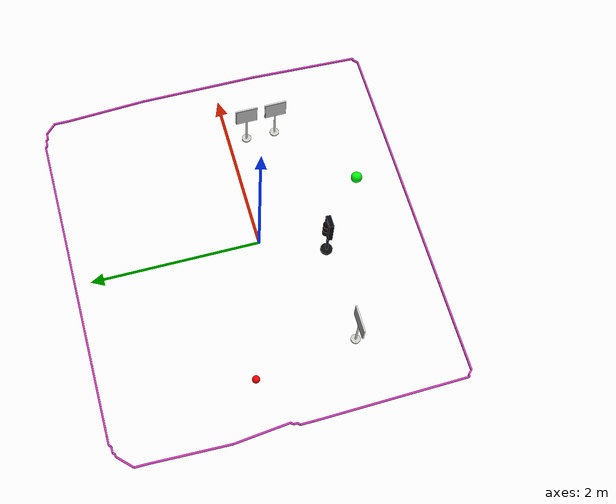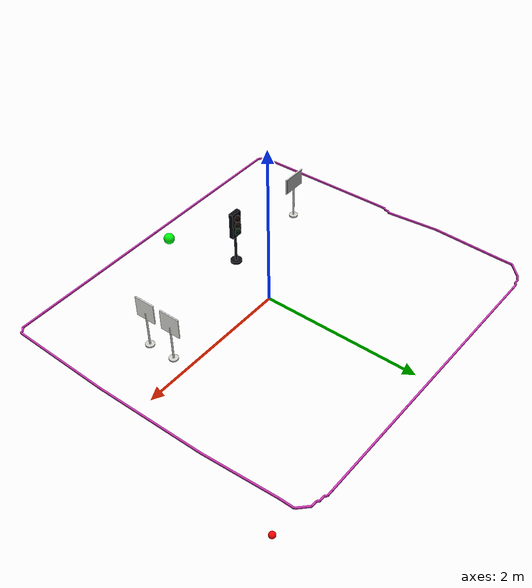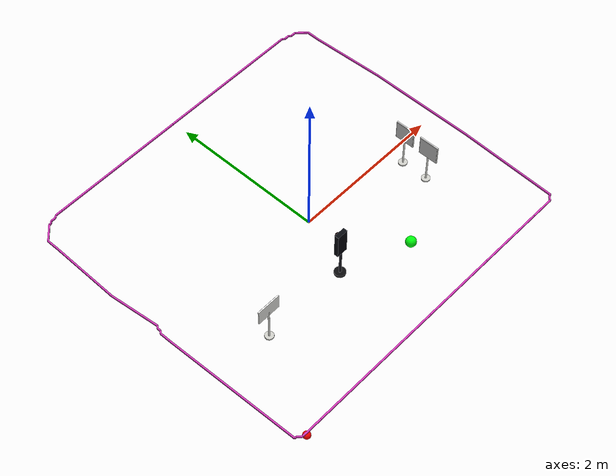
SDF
<sdf version="1.7">
 <world name="autonomous_map_3d_world">
  <model name="traffic_light_lower_island">
   <static>1</static>
   <link name="traffic_light_link">
    <visual name="base_visual">
     <pose>0 0 0.015 0 -0 0</pose>
     <geometry><cylinder><radius>0.07</radius><length>0.03</length></cylinder></geometry>
     <material><ambient>0.03 0.03 0.04 1</ambient><diffuse>0.04 0.04 0.05 1</diffuse></material>
    </visual>
    <visual name="pole_visual">
     <pose>0 0 0.25 0 -0 0</pose>
     <geometry><cylinder><radius>0.016</radius><length>0.47</length></cylinder></geometry>
     <material><ambient>0.08 0.08 0.1 1</ambient><diffuse>0.1 0.1 0.13 1</diffuse></material>
    </visual>
    <visual name="housing_visual">
     <pose>0 -0.006 0.565 0 -0 0</pose>
     <geometry><box><size>0.145 0.055 0.34</size></box></geometry>
     <material><ambient>0.02 0.025 0.04 1</ambient><diffuse>0.03 0.035 0.06 1</diffuse></material>
    </visual>
    <visual name="red_lens_visual">
     <pose>0 -0.038 0.66 0 -0 0</pose>
     <geometry><sphere><radius>0.043</radius></sphere></geometry>
     <material>
      <ambient>0.035 0.002 0.002 1</ambient>
      <diffuse>0.06 0.004 0.004 1</diffuse>
      <emissive>0 0 0 1</emissive>
     </material>
    </visual>
    <visual name="yellow_lens_visual">
     <pose>0 -0.038 0.565 0 -0 0</pose>
     <geometry><sphere><radius>0.043</radius></sphere></geometry>
     <material>
      <ambient>0.035 0.025 0.002 1</ambient>
      <diffuse>0.06 0.045 0.004 1</diffuse>
      <emissive>0 0 0 1</emissive>
     </material>
    </visual>
    <visual name="green_lens_visual">
     <pose>0 -0.038 0.47 0 -0 0</pose>
     <geometry><sphere><radius>0.043</radius></sphere></geometry>
     <material>
      <ambient>0.002 0.04 0.004 1</ambient>
      <diffuse>0.004 0.078 0.01 1</diffuse>
      <emissive>0 0 0 1</emissive>
     </material>
    </visual>
   </link>
   <pose>-0.281200 -0.731200 0.000000 0.000000 -0.000000 3.141593</pose>
  </model>
  <model name="traffic_light_top_island_red_active_lamp">
   <static>0</static>
   <link name="lamp_link">
    <gravity>0</gravity>
    <visual name="lamp_visual">
     <geometry><sphere><radius>0.065</radius></sphere></geometry>
     <material><ambient>1 0 0 1</ambient><diffuse>1 0 0 1</diffuse><emissive>0.0313726 0 0 1</emissive></material>
    </visual>
    <kinematic>1</kinematic>
    <inertial>
     <inertia><ixx>1</ixx><ixy>0</ixy><ixz>0</ixz><iyy>1</iyy><iyz>0</iyz><izz>1</izz></inertia>
     <mass>1</mass>
    </inertial>
   </link>
   <pose>-0.000000 0.000000 -5.000000 0.000000 -0.000000 3.141593</pose>
  </model>
  <model name="traffic_light_top_island_yellow_active_lamp">
   <static>0</static>
   <link name="lamp_link">
    <gravity>0</gravity>
    <visual name="lamp_visual">
     <geometry><sphere><radius>0.065</radius></sphere></geometry>
     <material>
      <ambient>1 0.72 0 1</ambient>
      <diffuse>1 0.72 0 1</diffuse>
      <emissive>0.0313726 0.0203922 0 1</emissive>
     </material>
    </visual>
    <kinematic>1</kinematic>
    <inertial>
     <inertia><ixx>1</ixx><ixy>0</ixy><ixz>0</ixz><iyy>1</iyy><iyz>0</iyz><izz>1</izz></inertia>
     <mass>1</mass>
    </inertial>
   </link>
   <pose>-0.000000 0.000000 -5.000000 0.000000 -0.000000 3.141593</pose>
  </model>
  <model name="traffic_light_lower_island_red_active_lamp">
   <static>0</static>
   <link name="lamp_link">
    <gravity>0</gravity>
    <visual name="lamp_visual">
     <geometry><sphere><radius>0.065</radius></sphere></geometry>
     <material><ambient>1 0 0 1</ambient><diffuse>1 0 0 1</diffuse><emissive>0.0313726 0 0 1</emissive></material>
    </visual>
    <kinematic>1</kinematic>
    <inertial>
     <inertia><ixx>1</ixx><ixy>0</ixy><ixz>0</ixz><iyy>1</iyy><iyz>0</iyz><izz>1</izz></inertia>
     <mass>1</mass>
    </inertial>
   </link>
   <pose>-0.000000 0.000000 -5.000000 0.000000 -0.000000 3.141593</pose>
  </model>
  <model name="traffic_light_lower_island_yellow_active_lamp">
   <static>0</static>
   <link name="lamp_link">
    <gravity>0</gravity>
    <visual name="lamp_visual">
     <geometry><sphere><radius>0.065</radius></sphere></geometry>
     <material>
      <ambient>1 0.72 0 1</ambient>
      <diffuse>1 0.72 0 1</diffuse>
      <emissive>0.0313726 0.0203922 0 1</emissive>
     </material>
    </visual>
    <kinematic>1</kinematic>
    <inertial>
     <inertia><ixx>1</ixx><ixy>0</ixy><ixz>0</ixz><iyy>1</iyy><iyz>0</iyz><izz>1</izz></inertia>
     <mass>1</mass>
    </inertial>
   </link>
   <pose>-0.000000 0.000000 -5.000000 0.000000 -0.000000 3.141593</pose>
  </model>
  <model name="traffic_light_lower_island_green_active_lamp">
   <static>0</static>
   <link name="lamp_link">
    <gravity>0</gravity>
    <visual name="lamp_visual">
     <geometry><sphere><radius>0.065</radius></sphere></geometry>
     <material>
      <ambient>0 1 0.05 1</ambient>
      <diffuse>0 1 0.05 1</diffuse>
      <emissive>0 0.0313726 0.3 1</emissive>
     </material>
    </visual>
    <kinematic>1</kinematic>
    <inertial>
     <inertia><ixx>1</ixx><ixy>0</ixy><ixz>0</ixz><iyy>1</iyy><iyz>0</iyz><izz>1</izz></inertia>
     <mass>1</mass>
    </inertial>
   </link>
   <pose>0.308200 -1.237500 0.470000 0.000000 -0.000000 3.141593</pose>
  </model>
  <model name="sign_speed_limit_left_island">
   <static>1</static>
   <link name="sign_link">
    <visual name="base_visual">
     <pose>0 0 0.01 0 -0 0</pose>
     <geometry><cylinder><radius>0.055</radius><length>0.02</length></cylinder></geometry>
     <material><ambient>0.72 0.72 0.7 1</ambient><diffuse>0.78 0.78 0.76 1</diffuse></material>
    </visual>
    <visual name="pole_visual">
     <pose>0 0 0.245 0 -0 0</pose>
     <geometry><cylinder><radius>0.011</radius><length>0.47</length></cylinder></geometry>
     <material><ambient>0.72 0.72 0.7 1</ambient><diffuse>0.82 0.82 0.8 1</diffuse></material>
    </visual>
    <visual name="back_plate_visual">
     <pose>0 0 0.52 0 -0 0</pose>
     <geometry><box><size>0.26 0.014 0.26</size></box></geometry>
     <material><ambient>0.96 0.96 0.94 1</ambient><diffuse>0.98 0.98 0.96 1</diffuse></material>
    </visual>
    <visual name="sign_face_visual">
     <pose>0 -0.011 0.52 0 -0 0</pose>
     <geometry><box><size>0.246 0.004 0.246</size></box></geometry>
     <material>
      <script>
       <uri>model://road_sign_speed_limit/materials/scripts</uri>
       <uri>model://road_sign_speed_limit/materials/textures</uri>
       <name>RoadSign/SpeedLimit</name>
      </script>
     </material>
    </visual>
   </link>
   <pose>1.406200 -0.567200 0.000000 0.000000 0.000000 -1.570793</pose>
  </model>
  <model name="sign_parking_lower_right_island">
   <static>1</static>
   <link name="sign_link">
    <visual name="base_visual">
     <pose>0 0 0.01 0 -0 0</pose>
     <geometry><cylinder><radius>0.055</radius><length>0.02</length></cylinder></geometry>
     <material><ambient>0.72 0.72 0.7 1</ambient><diffuse>0.78 0.78 0.76 1</diffuse></material>
    </visual>
    <visual name="pole_visual">
     <pose>0 0 0.245 0 -0 0</pose>
     <geometry><cylinder><radius>0.011</radius><length>0.47</length></cylinder></geometry>
     <material><ambient>0.72 0.72 0.7 1</ambient><diffuse>0.82 0.82 0.8 1</diffuse></material>
    </visual>
    <visual name="back_plate_visual">
     <pose>0 0 0.52 0 -0 0</pose>
     <geometry><box><size>0.31 0.014 0.21</size></box></geometry>
     <material><ambient>0.96 0.96 0.94 1</ambient><diffuse>0.98 0.98 0.96 1</diffuse></material>
    </visual>
    <visual name="sign_face_visual">
     <pose>0 -0.011 0.52 0 -0 0</pose>
     <geometry><box><size>0.294 0.004 0.196</size></box></geometry>
     <material>
      <script>
       <uri>model://road_sign_parking/materials/scripts</uri>
       <uri>model://road_sign_parking/materials/textures</uri>
       <name>RoadSign/Parking</name>
      </script>
     </material>
    </visual>
   </link>
   <pose>-1.429700 -0.731200 0.000000 0.000000 -0.000000 3.141593</pose>
  </model>
  <model name="sign_turn_left_lower_left_island">
   <static>1</static>
   <link name="sign_link">
    <visual name="base_visual">
     <pose>0 0 0.01 0 -0 0</pose>
     <geometry><cylinder><radius>0.055</radius><length>0.02</length></cylinder></geometry>
     <material><ambient>0.72 0.72 0.7 1</ambient><diffuse>0.78 0.78 0.76 1</diffuse></material>
    </visual>
    <visual name="pole_visual">
     <pose>0 0 0.245 0 -0 0</pose>
     <geometry><cylinder><radius>0.011</radius><length>0.47</length></cylinder></geometry>
     <material><ambient>0.72 0.72 0.7 1</ambient><diffuse>0.82 0.82 0.8 1</diffuse></material>
    </visual>
    <visual name="back_plate_visual">
     <pose>0 0 0.52 0 -0 0</pose>
     <geometry><box><size>0.26 0.014 0.26</size></box></geometry>
     <material><ambient>0.96 0.96 0.94 1</ambient><diffuse>0.98 0.98 0.96 1</diffuse></material>
    </visual>
    <visual name="sign_face_visual">
     <pose>0 -0.011 0.52 0 -0 0</pose>
     <geometry><box><size>0.246 0.004 0.246</size></box></geometry>
     <material>
      <script>
       <uri>model://road_sign_turn_left/materials/scripts</uri>
       <uri>model://road_sign_turn_left/materials/textures</uri>
       <name>RoadSign/TurnLeft</name>
      </script>
     </material>
    </visual>
   </link>
   <pose>1.406200 -0.215600 0.000000 0.000000 0.000000 -1.570793</pose>
  </model>
  <model name="route_preview_code_transform_magenta">
   <static>1</static>
   <link name="route_preview_link">
    <visual name="route_segment_0000">
     <pose>-0.937500 2.179688 0.040000 0.000000 0.000000 0.000000</pose>
     <geometry><box><size>1.781250 0.020000 0.020000</size></box></geometry>
     <material>
      <script><name>Gazebo/RoutePreviewMagenta</name></script>
      <ambient>1 0 1 1</ambient>
      <diffuse>1 0 1 1</diffuse>
      <emissive>0.7 0 0.7 1</emissive>
     </material>
    </visual>
    <visual name="route_segment_0001">
     <pose>0.210938 2.179688 0.040000 0.000000 0.000000 0.000000</pose>
     <geometry><box><size>0.515625 0.020000 0.020000</size></box></geometry>
     <material>
      <script><name>Gazebo/RoutePreviewMagenta</name></script>
      <ambient>1 0 1 1</ambient>
      <diffuse>1 0 1 1</diffuse>
      <emissive>0.7 0 0.7 1</emissive>
     </material>
    </visual>
    <visual name="route_segment_0002">
     <pose>0.703125 2.179688 0.040000 0.000000 0.000000 0.000000</pose>
     <geometry><box><size>0.468750 0.020000 0.020000</size></box></geometry>
     <material>
      <script><name>Gazebo/RoutePreviewMagenta</name></script>
      <ambient>1 0 1 1</ambient>
      <diffuse>1 0 1 1</diffuse>
      <emissive>0.7 0 0.7 1</emissive>
     </material>
    </visual>
    <visual name="route_segment_0003">
     <pose>1.371094 2.179688 0.040000 0.000000 0.000000 0.000000</pose>
     <geometry><box><size>0.867188 0.020000 0.020000</size></box></geometry>
     <material>
      <script><name>Gazebo/RoutePreviewMagenta</name></script>
      <ambient>1 0 1 1</ambient>
      <diffuse>1 0 1 1</diffuse>
      <emissive>0.7 0 0.7 1</emissive>
     </material>
    </visual>
    <visual name="route_segment_0004">
     <pose>1.839844 2.179688 0.040000 0.000000 0.000000 0.000000</pose>
     <geometry><box><size>0.070312 0.020000 0.020000</size></box></geometry>
     <material>
      <script><name>Gazebo/RoutePreviewMagenta</name></script>
      <ambient>1 0 1 1</ambient>
      <diffuse>1 0 1 1</diffuse>
      <emissive>0.7 0 0.7 1</emissive>
     </material>
    </visual>
    <visual name="route_segment_0005">
     <pose>1.886719 2.167969 0.040000 0.000000 0.000000 -0.785398</pose>
     <geometry><box><size>0.033146 0.020000 0.020000</size></box></geometry>
     <material>
      <script><name>Gazebo/RoutePreviewMagenta</name></script>
      <ambient>1 0 1 1</ambient>
      <diffuse>1 0 1 1</diffuse>
      <emissive>0.7 0 0.7 1</emissive>
     </material>
    </visual>
    <visual name="route_segment_0006">
     <pose>1.933594 2.156250 0.040000 0.000000 0.000000 0.000000</pose>
     <geometry><box><size>0.070312 0.020000 0.020000</size></box></geometry>
     <material>
      <script><name>Gazebo/RoutePreviewMagenta</name></script>
      <ambient>1 0 1 1</ambient>
      <diffuse>1 0 1 1</diffuse>
      <emissive>0.7 0 0.7 1</emissive>
     </material>
    </visual>
    <visual name="route_segment_0007">
     <pose>1.980469 2.144531 0.040000 0.000000 0.000000 -0.785398</pose>
     <geometry><box><size>0.033146 0.020000 0.020000</size></box></geometry>
     <material>
      <script><name>Gazebo/RoutePreviewMagenta</name></script>
      <ambient>1 0 1 1</ambient>
      <diffuse>1 0 1 1</diffuse>
      <emissive>0.7 0 0.7 1</emissive>
     </material>
    </visual>
    <visual name="route_segment_0008">
     <pose>2.027344 2.132812 0.040000 0.000000 0.000000 0.000000</pose>
     <geometry><box><size>0.070312 0.020000 0.020000</size></box></geometry>
     <material>
      <script><name>Gazebo/RoutePreviewMagenta</name></script>
      <ambient>1 0 1 1</ambient>
      <diffuse>1 0 1 1</diffuse>
      <emissive>0.7 0 0.7 1</emissive>
     </material>
    </visual>
    <visual name="route_segment_0009">
     <pose>2.121094 2.074219 0.040000 0.000000 0.000000 -0.785398</pose>
     <geometry><box><size>0.165728 0.020000 0.020000</size></box></geometry>
     <material>
      <script><name>Gazebo/RoutePreviewMagenta</name></script>
      <ambient>1 0 1 1</ambient>
      <diffuse>1 0 1 1</diffuse>
      <emissive>0.7 0 0.7 1</emissive>
     </material>
    </visual>
    <visual name="route_segment_0010">
     <pose>2.179688 1.921875 0.040000 0.000000 0.000000 -1.570796</pose>
     <geometry><box><size>0.187500 0.020000 0.020000</size></box></geometry>
     <material>
      <script><name>Gazebo/RoutePreviewMagenta</name></script>
      <ambient>1 0 1 1</ambient>
      <diffuse>1 0 1 1</diffuse>
      <emissive>0.7 0 0.7 1</emissive>
     </material>
    </visual>
    <visual name="route_segment_0011">
     <pose>2.203125 1.359375 0.040000 0.000000 0.000000 -1.520838</pose>
     <geometry><box><size>0.938671 0.020000 0.020000</size></box></geometry>
     <material>
      <script><name>Gazebo/RoutePreviewMagenta</name></script>
      <ambient>1 0 1 1</ambient>
      <diffuse>1 0 1 1</diffuse>
      <emissive>0.7 0 0.7 1</emissive>
     </material>
    </visual>
    <visual name="route_segment_0012">
     <pose>2.226562 0.187500 0.040000 0.000000 0.000000 -1.570796</pose>
     <geometry><box><size>1.406250 0.020000 0.020000</size></box></geometry>
     <material>
      <script><name>Gazebo/RoutePreviewMagenta</name></script>
      <ambient>1 0 1 1</ambient>
      <diffuse>1 0 1 1</diffuse>
      <emissive>0.7 0 0.7 1</emissive>
     </material>
    </visual>
    <visual name="route_segment_0013">
     <pose>2.203125 -1.160156 0.040000 0.000000 0.000000 -1.607144</pose>
     <geometry><box><size>1.289914 0.020000 0.020000</size></box></geometry>
     <material>
      <script><name>Gazebo/RoutePreviewMagenta</name></script>
      <ambient>1 0 1 1</ambient>
      <diffuse>1 0 1 1</diffuse>
      <emissive>0.7 0 0.7 1</emissive>
     </material>
    </visual>
    <visual name="route_segment_0014">
     <pose>2.167969 -1.804688 0.040000 0.000000 0.000000 3.141593</pose>
     <geometry><box><size>0.023438 0.020000 0.020000</size></box></geometry>
     <material>
      <script><name>Gazebo/RoutePreviewMagenta</name></script>
      <ambient>1 0 1 1</ambient>
      <diffuse>1 0 1 1</diffuse>
      <emissive>0.7 0 0.7 1</emissive>
     </material>
    </visual>
    <visual name="route_segment_0015">
     <pose>2.132812 -1.828125 0.040000 0.000000 0.000000 -2.356194</pose>
     <geometry><box><size>0.066291 0.020000 0.020000</size></box></geometry>
     <material>
      <script><name>Gazebo/RoutePreviewMagenta</name></script>
      <ambient>1 0 1 1</ambient>
      <diffuse>1 0 1 1</diffuse>
      <emissive>0.7 0 0.7 1</emissive>
     </material>
    </visual>
    <visual name="route_segment_0016">
     <pose>1.957031 -1.851562 0.040000 0.000000 0.000000 3.141593</pose>
     <geometry><box><size>0.304688 0.020000 0.020000</size></box></geometry>
     <material>
      <script><name>Gazebo/RoutePreviewMagenta</name></script>
      <ambient>1 0 1 1</ambient>
      <diffuse>1 0 1 1</diffuse>
      <emissive>0.7 0 0.7 1</emissive>
     </material>
    </visual>
    <visual name="route_segment_0017">
     <pose>1.371094 -1.851562 0.040000 0.000000 0.000000 3.141593</pose>
     <geometry><box><size>0.867188 0.020000 0.020000</size></box></geometry>
     <material>
      <script><name>Gazebo/RoutePreviewMagenta</name></script>
      <ambient>1 0 1 1</ambient>
      <diffuse>1 0 1 1</diffuse>
      <emissive>0.7 0 0.7 1</emissive>
     </material>
    </visual>
    <visual name="route_segment_0018">
     <pose>0.445312 -1.851562 0.040000 0.000000 0.000000 3.141593</pose>
     <geometry><box><size>0.984375 0.020000 0.020000</size></box></geometry>
     <material>
      <script><name>Gazebo/RoutePreviewMagenta</name></script>
      <ambient>1 0 1 1</ambient>
      <diffuse>1 0 1 1</diffuse>
      <emissive>0.7 0 0.7 1</emissive>
     </material>
    </visual>
    <visual name="route_segment_0019">
     <pose>-0.539062 -1.851562 0.040000 0.000000 0.000000 3.141593</pose>
     <geometry><box><size>0.984375 0.020000 0.020000</size></box></geometry>
     <material>
      <script><name>Gazebo/RoutePreviewMagenta</name></script>
      <ambient>1 0 1 1</ambient>
      <diffuse>1 0 1 1</diffuse>
      <emissive>0.7 0 0.7 1</emissive>
     </material>
    </visual>
    <visual name="route_segment_0020">
     <pose>-1.429688 -1.851562 0.040000 0.000000 0.000000 3.141593</pose>
     <geometry><box><size>0.796875 0.020000 0.020000</size></box></geometry>
     <material>
      <script><name>Gazebo/RoutePreviewMagenta</name></script>
      <ambient>1 0 1 1</ambient>
      <diffuse>1 0 1 1</diffuse>
      <emissive>0.7 0 0.7 1</emissive>
     </material>
    </visual>
    <visual name="route_segment_0021">
     <pose>-1.968750 -1.851562 0.040000 0.000000 0.000000 3.141593</pose>
     <geometry><box><size>0.281250 0.020000 0.020000</size></box></geometry>
     <material>
      <script><name>Gazebo/RoutePreviewMagenta</name></script>
      <ambient>1 0 1 1</ambient>
      <diffuse>1 0 1 1</diffuse>
      <emissive>0.7 0 0.7 1</emissive>
     </material>
    </visual>
    <visual name="route_segment_0022">
     <pose>-2.132812 -1.828125 0.040000 0.000000 0.000000 2.356194</pose>
     <geometry><box><size>0.066291 0.020000 0.020000</size></box></geometry>
     <material>
      <script><name>Gazebo/RoutePreviewMagenta</name></script>
      <ambient>1 0 1 1</ambient>
      <diffuse>1 0 1 1</diffuse>
      <emissive>0.7 0 0.7 1</emissive>
     </material>
    </visual>
    <visual name="route_segment_0023">
     <pose>-2.167969 -1.804688 0.040000 0.000000 0.000000 3.141593</pose>
     <geometry><box><size>0.023438 0.020000 0.020000</size></box></geometry>
     <material>
      <script><name>Gazebo/RoutePreviewMagenta</name></script>
      <ambient>1 0 1 1</ambient>
      <diffuse>1 0 1 1</diffuse>
      <emissive>0.7 0 0.7 1</emissive>
     </material>
    </visual>
    <visual name="route_segment_0024">
     <pose>-2.203125 -0.902344 0.040000 0.000000 0.000000 1.596765</pose>
     <geometry><box><size>1.805296 0.020000 0.020000</size></box></geometry>
     <material>
      <script><name>Gazebo/RoutePreviewMagenta</name></script>
      <ambient>1 0 1 1</ambient>
      <diffuse>1 0 1 1</diffuse>
      <emissive>0.7 0 0.7 1</emissive>
     </material>
    </visual>
    <visual name="route_segment_0025">
     <pose>-2.226562 0.070312 0.040000 0.000000 0.000000 1.570796</pose>
     <geometry><box><size>0.140625 0.020000 0.020000</size></box></geometry>
     <material>
      <script><name>Gazebo/RoutePreviewMagenta</name></script>
      <ambient>1 0 1 1</ambient>
      <diffuse>1 0 1 1</diffuse>
      <emissive>0.7 0 0.7 1</emissive>
     </material>
    </visual>
    <visual name="route_segment_0026">
     <pose>-2.214844 0.152344 0.040000 0.000000 0.000000 0.785398</pose>
     <geometry><box><size>0.033146 0.020000 0.020000</size></box></geometry>
     <material>
      <script><name>Gazebo/RoutePreviewMagenta</name></script>
      <ambient>1 0 1 1</ambient>
      <diffuse>1 0 1 1</diffuse>
      <emissive>0.7 0 0.7 1</emissive>
     </material>
    </visual>
    <visual name="route_segment_0027">
     <pose>-2.203125 0.187500 0.040000 0.000000 0.000000 1.570796</pose>
     <geometry><box><size>0.046875 0.020000 0.020000</size></box></geometry>
     <material>
      <script><name>Gazebo/RoutePreviewMagenta</name></script>
      <ambient>1 0 1 1</ambient>
      <diffuse>1 0 1 1</diffuse>
      <emissive>0.7 0 0.7 1</emissive>
     </material>
    </visual>
    <visual name="route_segment_0028">
     <pose>-2.191406 0.222656 0.040000 0.000000 0.000000 0.785398</pose>
     <geometry><box><size>0.033146 0.020000 0.020000</size></box></geometry>
     <material>
      <script><name>Gazebo/RoutePreviewMagenta</name></script>
      <ambient>1 0 1 1</ambient>
      <diffuse>1 0 1 1</diffuse>
      <emissive>0.7 0 0.7 1</emissive>
     </material>
    </visual>
    <visual name="route_segment_0029">
     <pose>-2.214844 0.562500 0.040000 0.000000 0.000000 1.677532</pose>
     <geometry><box><size>0.660006 0.020000 0.020000</size></box></geometry>
     <material>
      <script><name>Gazebo/RoutePreviewMagenta</name></script>
      <ambient>1 0 1 1</ambient>
      <diffuse>1 0 1 1</diffuse>
      <emissive>0.7 0 0.7 1</emissive>
     </material>
    </visual>
    <visual name="route_segment_0030">
     <pose>-2.238281 1.347656 0.040000 0.000000 0.000000 1.545161</pose>
     <geometry><box><size>0.914363 0.020000 0.020000</size></box></geometry>
     <material>
      <script><name>Gazebo/RoutePreviewMagenta</name></script>
      <ambient>1 0 1 1</ambient>
      <diffuse>1 0 1 1</diffuse>
      <emissive>0.7 0 0.7 1</emissive>
     </material>
    </visual>
    <visual name="route_segment_0031">
     <pose>-2.226562 1.886719 0.040000 0.000000 0.000000 1.570796</pose>
     <geometry><box><size>0.164062 0.020000 0.020000</size></box></geometry>
     <material>
      <script><name>Gazebo/RoutePreviewMagenta</name></script>
      <ambient>1 0 1 1</ambient>
      <diffuse>1 0 1 1</diffuse>
      <emissive>0.7 0 0.7 1</emissive>
     </material>
    </visual>
    <visual name="route_segment_0032">
     <pose>-2.144531 2.050781 0.040000 0.000000 0.000000 0.785398</pose>
     <geometry><box><size>0.232019 0.020000 0.020000</size></box></geometry>
     <material>
      <script><name>Gazebo/RoutePreviewMagenta</name></script>
      <ambient>1 0 1 1</ambient>
      <diffuse>1 0 1 1</diffuse>
      <emissive>0.7 0 0.7 1</emissive>
     </material>
    </visual>
    <visual name="route_segment_0033">
     <pose>-2.050781 2.132812 0.040000 0.000000 0.000000 0.000000</pose>
     <geometry><box><size>0.023438 0.020000 0.020000</size></box></geometry>
     <material>
      <script><name>Gazebo/RoutePreviewMagenta</name></script>
      <ambient>1 0 1 1</ambient>
      <diffuse>1 0 1 1</diffuse>
      <emissive>0.7 0 0.7 1</emissive>
     </material>
    </visual>
    <visual name="route_segment_0034">
     <pose>-2.027344 2.144531 0.040000 0.000000 0.000000 0.785398</pose>
     <geometry><box><size>0.033146 0.020000 0.020000</size></box></geometry>
     <material>
      <script><name>Gazebo/RoutePreviewMagenta</name></script>
      <ambient>1 0 1 1</ambient>
      <diffuse>1 0 1 1</diffuse>
      <emissive>0.7 0 0.7 1</emissive>
     </material>
    </visual>
    <visual name="route_segment_0035">
     <pose>-1.980469 2.156250 0.040000 0.000000 0.000000 0.000000</pose>
     <geometry><box><size>0.070312 0.020000 0.020000</size></box></geometry>
     <material>
      <script><name>Gazebo/RoutePreviewMagenta</name></script>
      <ambient>1 0 1 1</ambient>
      <diffuse>1 0 1 1</diffuse>
      <emissive>0.7 0 0.7 1</emissive>
     </material>
    </visual>
    <visual name="route_segment_0036">
     <pose>-1.933594 2.167969 0.040000 0.000000 0.000000 0.785398</pose>
     <geometry><box><size>0.033146 0.020000 0.020000</size></box></geometry>
     <material>
      <script><name>Gazebo/RoutePreviewMagenta</name></script>
      <ambient>1 0 1 1</ambient>
      <diffuse>1 0 1 1</diffuse>
      <emissive>0.7 0 0.7 1</emissive>
     </material>
    </visual>
    <visual name="route_segment_0037">
     <pose>-1.875000 2.179688 0.040000 0.000000 0.000000 0.000000</pose>
     <geometry><box><size>0.093750 0.020000 0.020000</size></box></geometry>
     <material>
      <script><name>Gazebo/RoutePreviewMagenta</name></script>
      <ambient>1 0 1 1</ambient>
      <diffuse>1 0 1 1</diffuse>
      <emissive>0.7 0 0.7 1</emissive>
     </material>
    </visual>
   </link>
  </model>
 </world>
</sdf>
